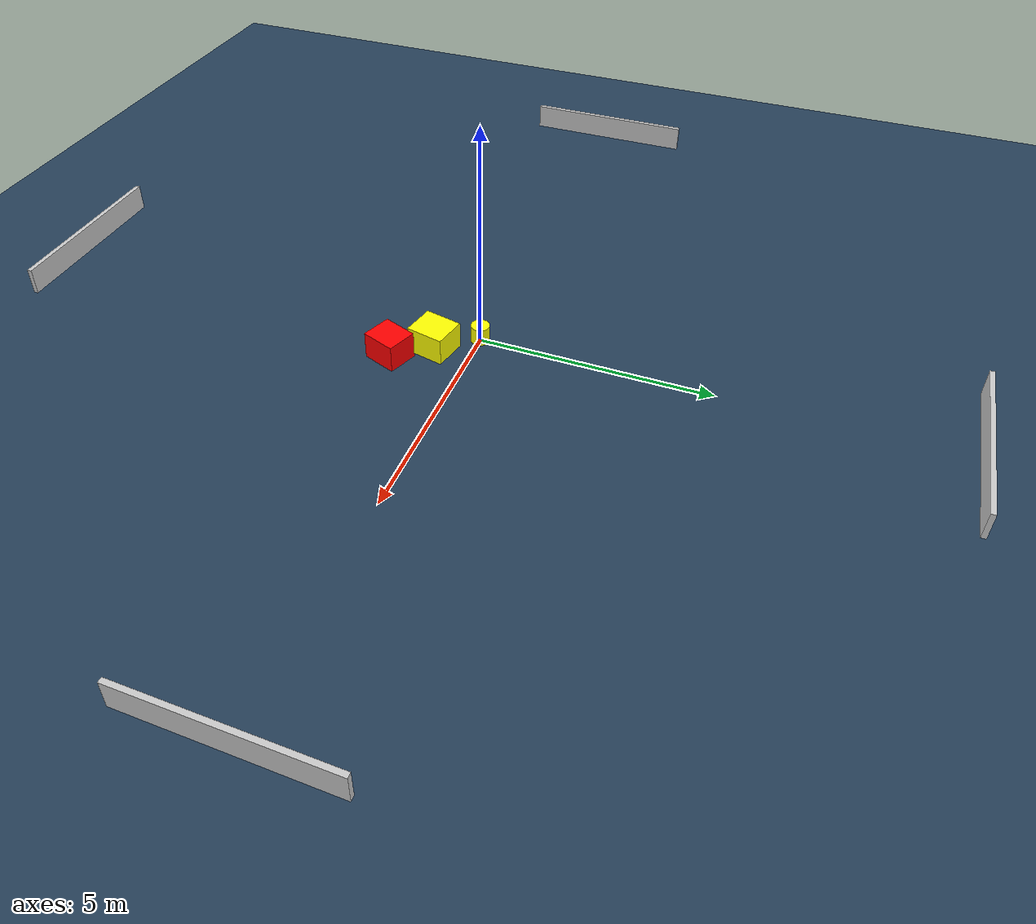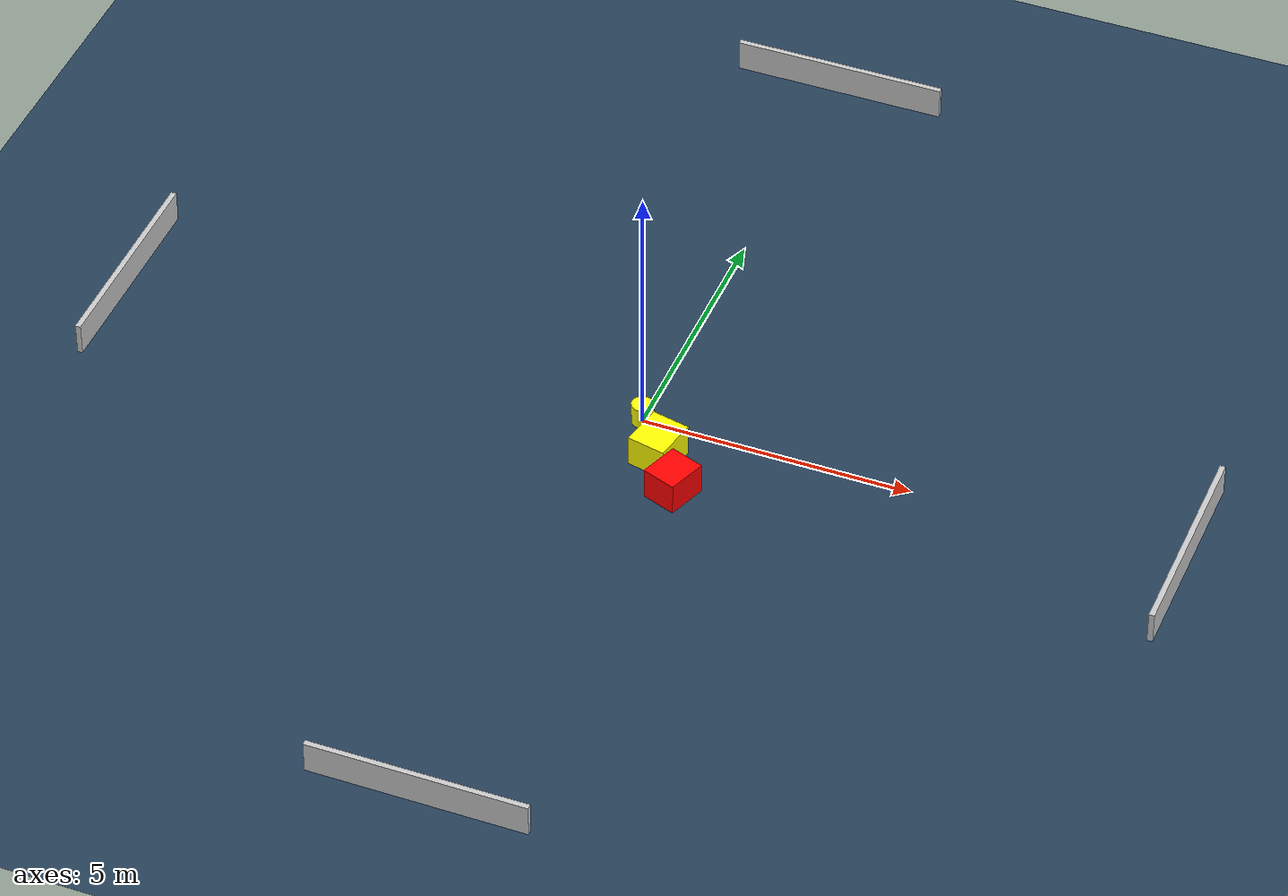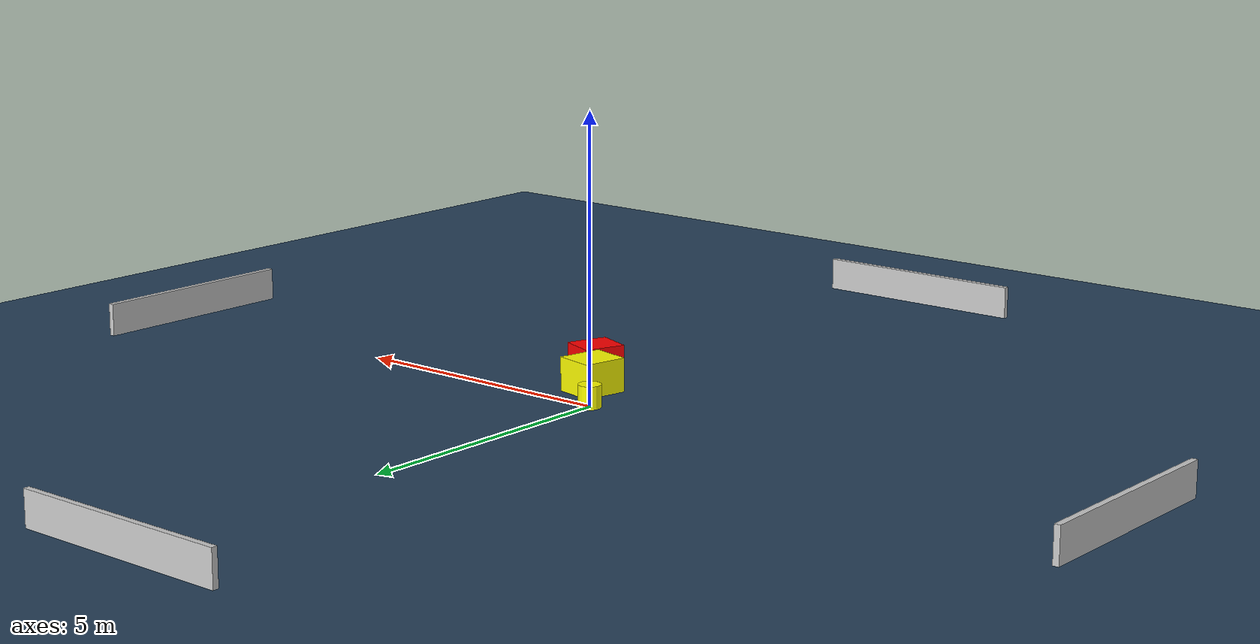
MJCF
<?xml version="1.0" ?>
<mujoco model="generated_environment">
  <option timestep="0.01" integrator="RK4" cone="elliptic"/>
  <default>
    <geom density="1"/>
  </default>
  <asset>
    <texture builtin="gradient" height="3072" name="skybox" rgb1="0.3 0.5 0.7" rgb2="0 0 0" type="skybox" width="512"/>
    <texture builtin="checker" height="300" name="groundplane" rgb1="0.2 0.3 0.4" rgb2="0.1 0.2 0.3" type="2d" width="300"/>
    <material name="groundplane" reflectance="0.2" texrepeat="5 5" texture="groundplane"/>
  </asset>
  <worldbody>
    <light dir="0 0 -1" directional="true" pos="0 0 1.5"/>
    <geom condim="3" friction="0.5 0.005 0.001" material="groundplane" name="floor" pos="0 0 0" size="0 0 0.05" type="plane"/>
    <body name="walls">
      <geom name="wall_1" condim="4" pos="-10.0 0.0 0.3" rgba="0.800000011920929 0.800000011920929 0.800000011920929 1.0" size="0.05 2.0 0.3" type="box"/>
      <geom name="wall_2" condim="4" pos="10.0 0.0 0.3" rgba="0.800000011920929 0.800000011920929 0.800000011920929 1.0" size="0.05 2.0 0.3" type="box"/>
      <geom name="wall_3" condim="4" pos="0.0 -10.0 0.3" rgba="0.800000011920929 0.800000011920929 0.800000011920929 1.0" size="2.0 0.05 0.3" type="box"/>
      <geom name="wall_4" condim="4" pos="0.0 10.0 0.3" rgba="0.800000011920929 0.800000011920929 0.800000011920929 1.0" size="2.0 0.05 0.3" type="box"/>
    </body>
    <body name="robot">
      <joint name="joint_x" type="slide" pos="0 0 0" axis="1 0 0"/>
      <joint name="joint_y" type="slide" pos="0 0 0" axis="0 1 0"/>
      <geom name="robot" type="cylinder" pos="0.0 0.0 0.2" size="0.2 0.2 0.0" mass="5.0" friction="1.0 0.005 0.0001" condim="4" rgba="1.0 1.0 0.0 1.0"/>
    </body>
    <body name="obstacle_1_movable">
      <geom name="obstacle_1_movable" condim="4" pos="0.612554372143166 -0.7969904885608444 0.3" euler="0 0 347.9435772692493" friction="0.0 0.005 0.001" rgba="1.0 1.0 0.0 1.0" size="0.3617292472615953 0.4074273773043583 0.3" type="box" mass="0.1"/>
      <joint type="free"/>
    </body>
    <body name="obstacle_2_static">
      <geom name="obstacle_2_static" condim="4" pos="1.1824967693397819 -1.5581276799658335 0.3" euler="0 0 159.67188330890846" friction="0.0 0.005 0.001" rgba="1.0 0.0 0.0 1.0" size="0.33087912715811674 0.3773514857151088 0.3" type="box"/>
    </body>
  </worldbody>
  <actuator>
    <motor name="actuator_x" joint="joint_x" gear="1" ctrlrange="-1 1"/>
    <motor name="actuator_y" joint="joint_y" gear="1" ctrlrange="-1 1"/>
  </actuator>
</mujoco>
